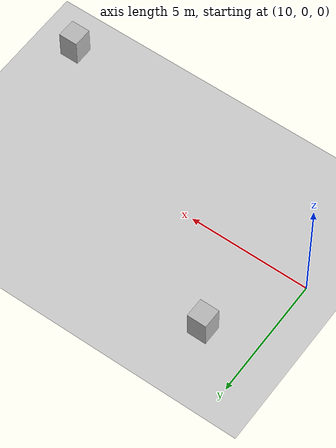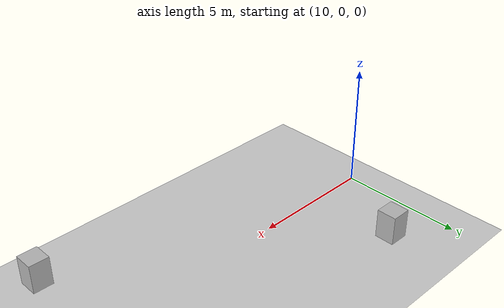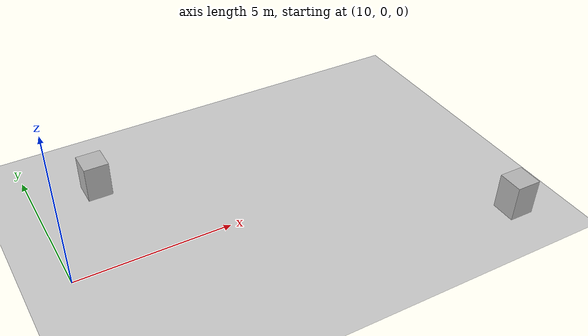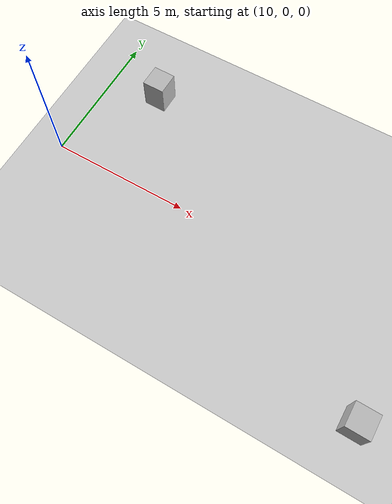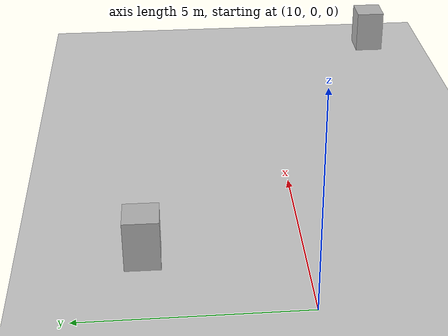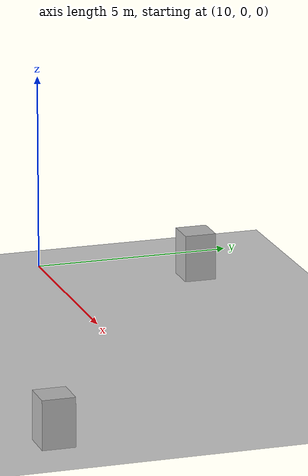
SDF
<?xml version="1.0"?>
<sdf version="1.6">
  <world name="v2-04g-r2-cruise-s4952">
    <gravity>0 0 -9.81</gravity>
    <physics name="v2_deterministic" type="ode">
      <max_step_size>0.002</max_step_size>
      <real_time_update_rate>500</real_time_update_rate>
    </physics>
    <include>
      <uri>model://sun</uri>
    </include>
    <include>
      <uri>model://ground_plane</uri>
    </include>
    <model name="cruise-left">
      <static>true</static>
      <pose>12.008154988 3.548533101 0.600000000 0 0 -0.005881643</pose>
      <link name="link">
        <collision name="collision">
          <geometry>
            <box>
              <size>0.800000 0.800000 1.200000</size>
            </box>
          </geometry>
        </collision>
        <visual name="visual">
          <geometry>
            <box>
              <size>0.800000 0.800000 1.200000</size>
            </box>
          </geometry>
        </visual>
      </link>
    </model>
    <model name="cruise-right">
      <static>true</static>
      <pose>23.019437872 -3.533309409 0.600000000 0 0 -0.006317626</pose>
      <link name="link">
        <collision name="collision">
          <geometry>
            <box>
              <size>0.800000 0.800000 1.200000</size>
            </box>
          </geometry>
        </collision>
        <visual name="visual">
          <geometry>
            <box>
              <size>0.800000 0.800000 1.200000</size>
            </box>
          </geometry>
        </visual>
      </link>
    </model>
  </world>
</sdf>
